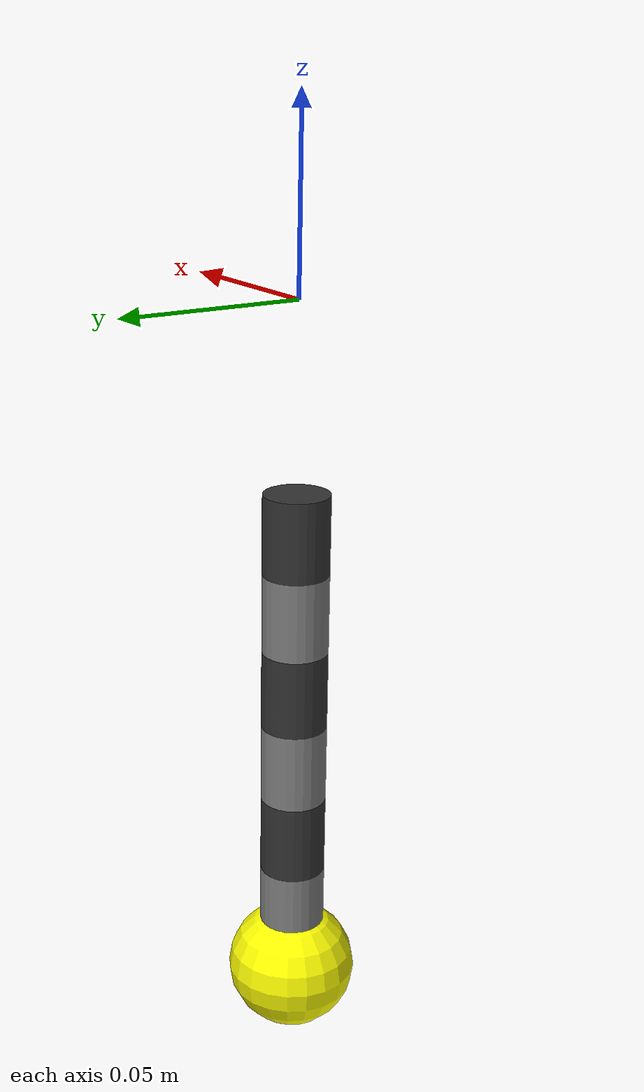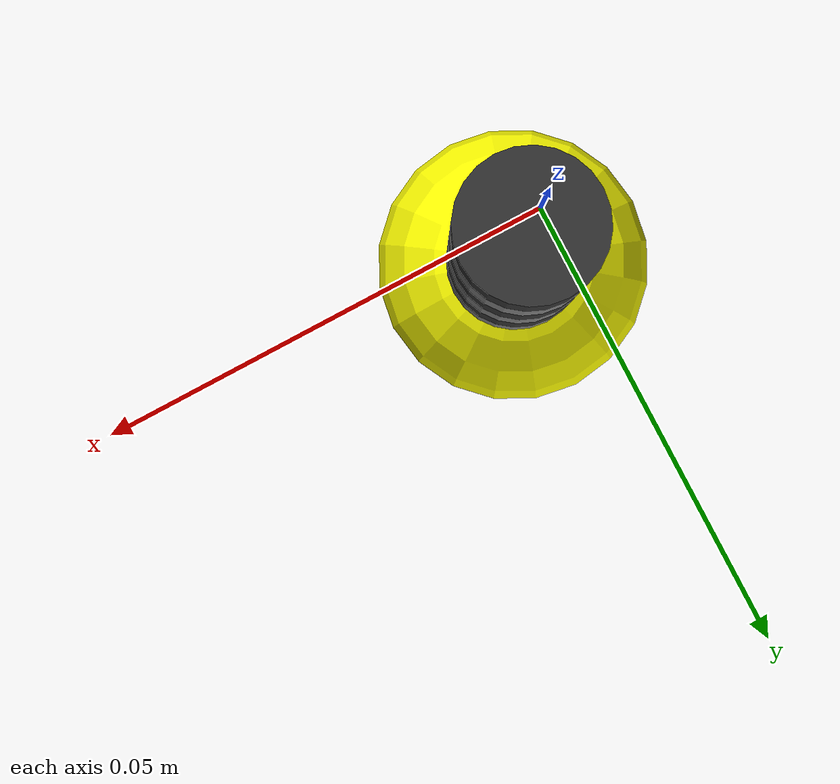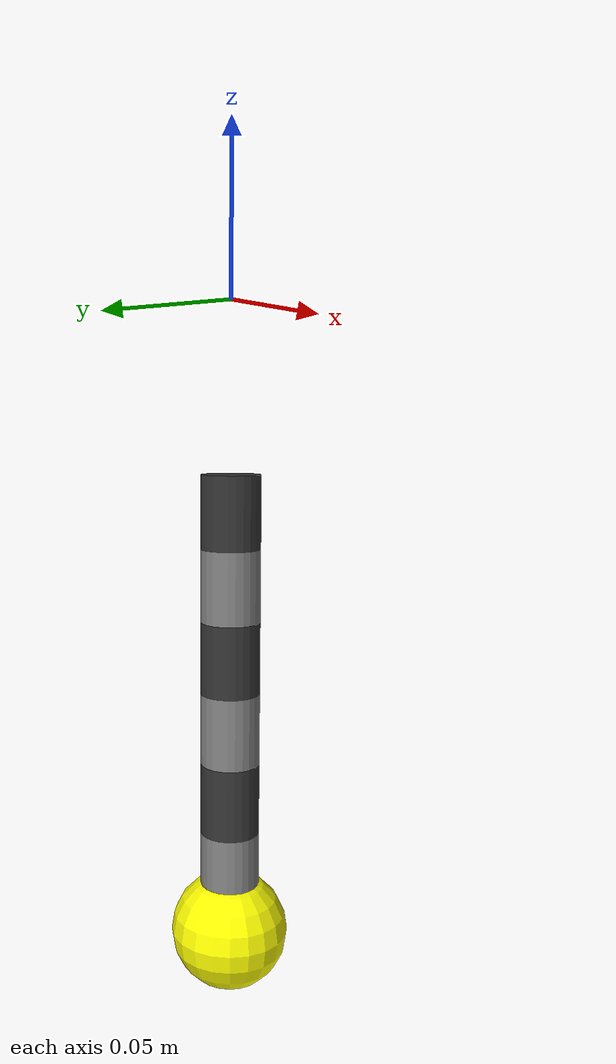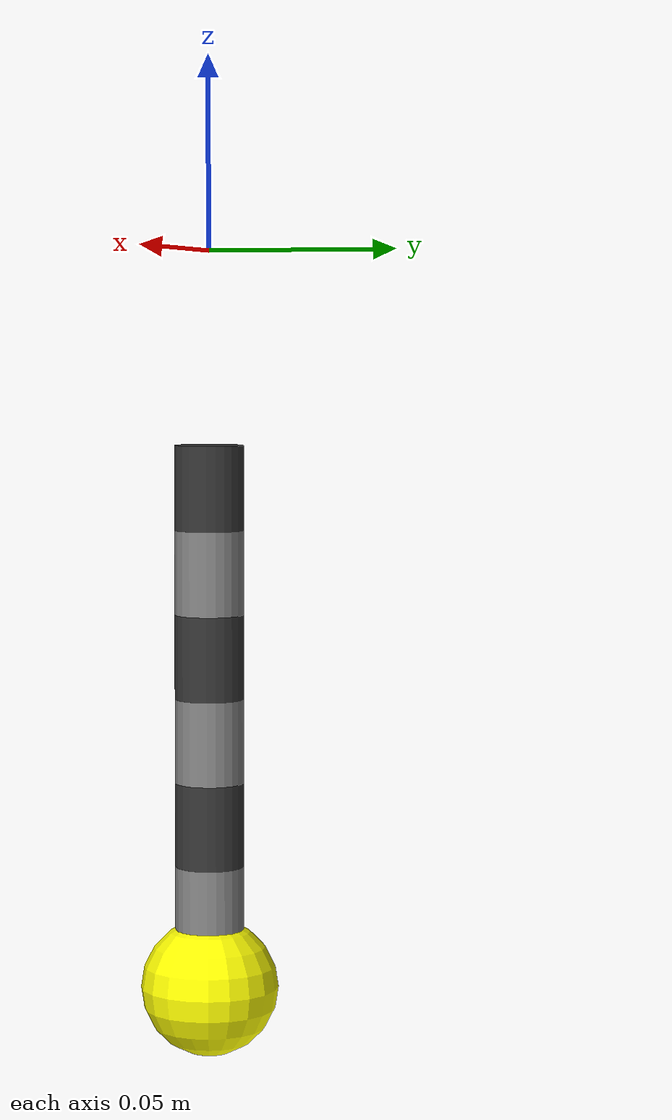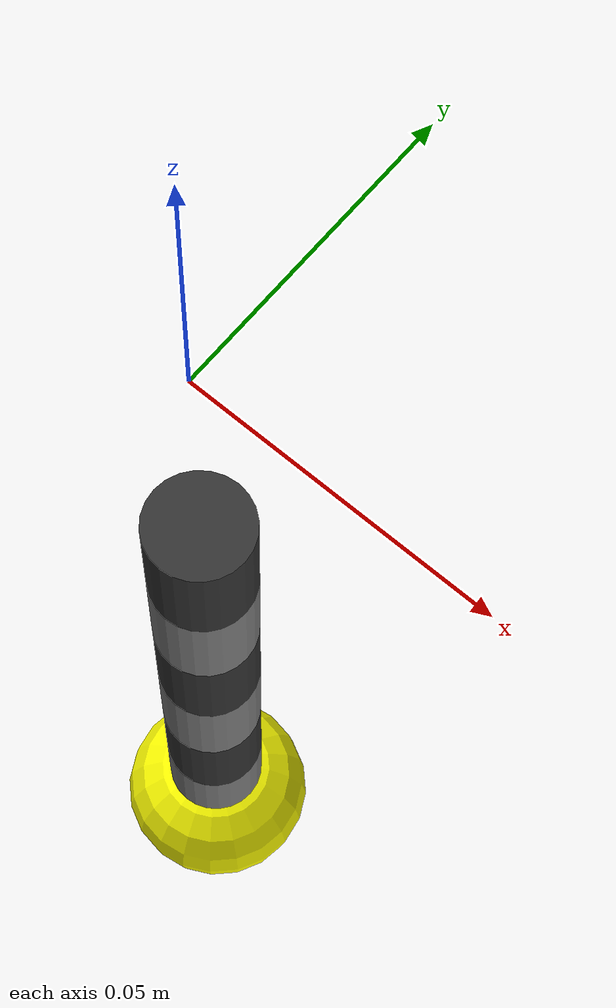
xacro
<?xml version="1.0"?>
<!--
  Scaffold URDF/Xacro for the ur5 arm: cylinder chain with the upstream
  arm's joint names. Pairs with models/x500_with_ur5/model.sdf so
  ros2_control sees the same kinematics in Gazebo.
-->
<robot xmlns:xacro="http://www.ros.org/wiki/xacro" name="ur5">

  <xacro:macro name="scaffold_link" params="name color_r color_g color_b">
    <link name="${name}">
      <inertial>
        <mass value="0.03"/>
        <origin xyz="0 0 0.0110" rpy="0 0 0"/>
        <inertia ixx="1.817500e-06" iyy="1.817500e-06" izz="1.215000e-06"
                 ixy="0" ixz="0" iyz="0"/>
      </inertial>
      <visual>
        <origin xyz="0 0 0.0110" rpy="0 0 0"/>
        <geometry><cylinder radius="0.009" length="0.022"/></geometry>
        <material name="${name}_mat"><color rgba="${color_r} ${color_g} ${color_b} 1"/></material>
      </visual>
      <collision>
        <origin xyz="0 0 0.0110" rpy="0 0 0"/>
        <geometry><cylinder radius="0.009" length="0.022"/></geometry>
      </collision>
    </link>
  </xacro:macro>

  <link name="base_link"/>

  <xacro:scaffold_link name="ur5_link1" color_r="0.2" color_g="0.2" color_b="0.2"/>
  <joint name="shoulder_pan_joint" type="revolute">
    <parent link="base_link"/>
    <child link="ur5_link1"/>
    <origin xyz="0 0 -0.05" rpy="3.14159 0 0"/>
    <axis xyz="0 1 0"/>
    <limit lower="-3.14159" upper="3.14159" effort="2.0" velocity="3.0"/>
    <dynamics damping="0.05" friction="0.01"/>
  </joint>
  <xacro:scaffold_link name="ur5_link2" color_r="0.5" color_g="0.5" color_b="0.5"/>
  <joint name="shoulder_lift_joint" type="revolute">
    <parent link="ur5_link1"/>
    <child link="ur5_link2"/>
    <origin xyz="0 0 0.0220" rpy="0 0 0"/>
    <axis xyz="0 1 0"/>
    <limit lower="-3.14159" upper="3.14159" effort="2.0" velocity="3.0"/>
    <dynamics damping="0.05" friction="0.01"/>
  </joint>
  <xacro:scaffold_link name="ur5_link3" color_r="0.2" color_g="0.2" color_b="0.2"/>
  <joint name="elbow_joint" type="revolute">
    <parent link="ur5_link2"/>
    <child link="ur5_link3"/>
    <origin xyz="0 0 0.0220" rpy="0 0 0"/>
    <axis xyz="0 1 0"/>
    <limit lower="-3.14159" upper="3.14159" effort="2.0" velocity="3.0"/>
    <dynamics damping="0.05" friction="0.01"/>
  </joint>
  <xacro:scaffold_link name="ur5_link4" color_r="0.5" color_g="0.5" color_b="0.5"/>
  <joint name="wrist_1_joint" type="revolute">
    <parent link="ur5_link3"/>
    <child link="ur5_link4"/>
    <origin xyz="0 0 0.0220" rpy="0 0 0"/>
    <axis xyz="0 1 0"/>
    <limit lower="-3.14159" upper="3.14159" effort="2.0" velocity="3.0"/>
    <dynamics damping="0.05" friction="0.01"/>
  </joint>
  <xacro:scaffold_link name="ur5_link5" color_r="0.2" color_g="0.2" color_b="0.2"/>
  <joint name="wrist_2_joint" type="revolute">
    <parent link="ur5_link4"/>
    <child link="ur5_link5"/>
    <origin xyz="0 0 0.0220" rpy="0 0 0"/>
    <axis xyz="0 1 0"/>
    <limit lower="-3.14159" upper="3.14159" effort="2.0" velocity="3.0"/>
    <dynamics damping="0.05" friction="0.01"/>
  </joint>
  <xacro:scaffold_link name="ur5_link6" color_r="0.5" color_g="0.5" color_b="0.5"/>
  <joint name="wrist_3_joint" type="revolute">
    <parent link="ur5_link5"/>
    <child link="ur5_link6"/>
    <origin xyz="0 0 0.0220" rpy="0 0 0"/>
    <axis xyz="0 1 0"/>
    <limit lower="-3.14159" upper="3.14159" effort="2.0" velocity="3.0"/>
    <dynamics damping="0.05" friction="0.01"/>
  </joint>

  <link name="tool0">
    <inertial>
      <mass value="0.02"/>
      <inertia ixx="1e-5" iyy="1e-5" izz="1e-5" ixy="0" ixz="0" iyz="0"/>
    </inertial>
    <visual>
      <geometry><sphere radius="0.018"/></geometry>
      <material name="ee_mat"><color rgba="1 1 0 1"/></material>
    </visual>
    <collision><geometry><sphere radius="0.018"/></geometry></collision>
  </link>
  <joint name="j_ee" type="fixed">
    <parent link="ur5_link6"/>
    <child link="tool0"/>
    <origin xyz="0 0 0.0320" rpy="0 0 0"/>
  </joint>

  <xacro:arg name="sim_mode" default="gz"/>
  <ros2_control name="ur5_hw" type="system">
    <hardware>
      <xacro:if value="${'$(arg sim_mode)' == 'gz'}">
        <plugin>gz_ros2_control/GazeboSimSystem</plugin>
      </xacro:if>
      <xacro:unless value="${'$(arg sim_mode)' == 'gz'}">
        <plugin>mock_components/GenericSystem</plugin>
      </xacro:unless>
    </hardware>
    <joint name="shoulder_pan_joint">
      <command_interface name="position"/>
      <state_interface name="position"/>
      <state_interface name="velocity"/>
    </joint>
    <joint name="shoulder_lift_joint">
      <command_interface name="position"/>
      <state_interface name="position"/>
      <state_interface name="velocity"/>
    </joint>
    <joint name="elbow_joint">
      <command_interface name="position"/>
      <state_interface name="position"/>
      <state_interface name="velocity"/>
    </joint>
    <joint name="wrist_1_joint">
      <command_interface name="position"/>
      <state_interface name="position"/>
      <state_interface name="velocity"/>
    </joint>
    <joint name="wrist_2_joint">
      <command_interface name="position"/>
      <state_interface name="position"/>
      <state_interface name="velocity"/>
    </joint>
    <joint name="wrist_3_joint">
      <command_interface name="position"/>
      <state_interface name="position"/>
      <state_interface name="velocity"/>
    </joint>
  </ros2_control>

</robot>
